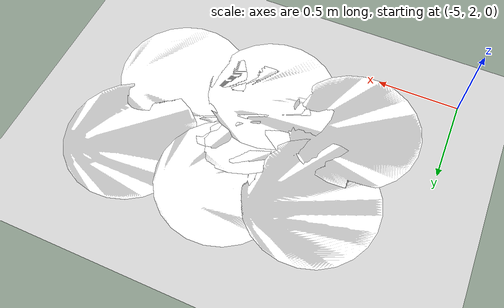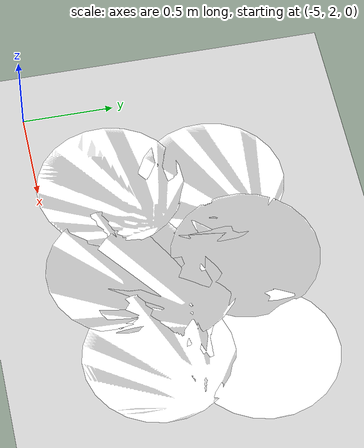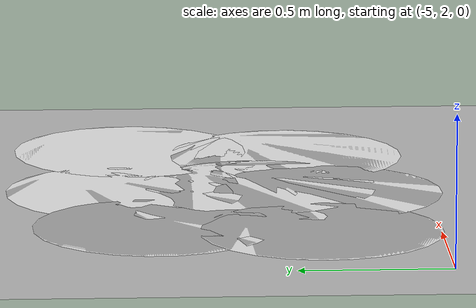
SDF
<sdf version="1.4">
 <world name="default">
  <light name="sun" type="directional">
   <pose>0 0 10 0 -0 0</pose>
   <diffuse>0.8 0.8 0.8 1</diffuse>
   <specular>0.2 0.2 0.2 1</specular>
   <attenuation>
    <range>1000</range>
    <constant>0.9</constant>
    <linear>0.01</linear>
    <quadratic>0.001</quadratic>
   </attenuation>
   <direction>-0.5 0.1 -0.9</direction>
  </light>
  <model name="ground_plane">
   <static>1</static>
   <link name="link">
    <collision name="collision">
     <geometry><plane><normal>0 0 1</normal><size>100 100</size></plane></geometry>
     <surface><friction><ode><mu>100</mu><mu2>50</mu2></ode></friction></surface>
    </collision>
    <visual name="visual">
     <cast_shadows>0</cast_shadows>
     <geometry><plane><normal>0 0 1</normal><size>100 100</size></plane></geometry>
     <material>
      <script><uri>file://media/materials/scripts/gazebo.material</uri><name>Gazebo/Grey</name></script>
     </material>
    </visual>
    <velocity_decay><linear>0</linear><angular>0</angular></velocity_decay>
   </link>
  </model>
  <physics type="ode">
   <max_step_size>0.01</max_step_size>
   <real_time_factor>1</real_time_factor>
   <real_time_update_rate>100</real_time_update_rate>
   <gravity>0 0 -9.8</gravity>
  </physics>
  <scene><ambient>0.4 0.4 0.4 1</ambient><background>0.7 0.7 0.7 1</background><shadows>1</shadows></scene>
  <model name="fogo">
   <static>1</static>
   <link name="chassis">
    <pose>0 0 0.001 0 -0 0</pose>
    <visual name="visual">
     <geometry><mesh><uri>file:///home/dav/.gazebo/models/1fogo/fire_marker.dae</uri></mesh></geometry>
    </visual>
    <velocity_decay><linear>0</linear><angular>0</angular></velocity_decay>
   </link>
   <pose>-3.91583 2.34864 0 0 -0 0</pose>
  </model>
  <model name="fogo_0">
   <static>1</static>
   <link name="chassis">
    <pose>0 0 0.001 0 -0 0</pose>
    <visual name="visual">
     <geometry><mesh><uri>file:///home/dav/.gazebo/models/1fogo/fire_marker.dae</uri></mesh></geometry>
    </visual>
    <velocity_decay><linear>0</linear><angular>0</angular></velocity_decay>
   </link>
   <pose>-4.39342 2.93161 0 0 -0 0</pose>
  </model>
  <model name="fogo_1">
   <static>1</static>
   <link name="chassis">
    <pose>0 0 0.001 0 -0 0</pose>
    <visual name="visual">
     <geometry><mesh><uri>file:///home/dav/.gazebo/models/1fogo/fire_marker.dae</uri></mesh></geometry>
    </visual>
    <velocity_decay><linear>0</linear><angular>0</angular></velocity_decay>
   </link>
   <pose>-4.46952 2.39073 0 0 -0 0</pose>
  </model>
  <model name="fogo_2">
   <static>1</static>
   <link name="chassis">
    <pose>0 0 0.001 0 -0 0</pose>
    <visual name="visual">
     <geometry><mesh><uri>file:///home/dav/.gazebo/models/1fogo/fire_marker.dae</uri></mesh></geometry>
    </visual>
    <velocity_decay><linear>0</linear><angular>0</angular></velocity_decay>
   </link>
   <pose>-3.26621 2.97863 0 0 -0 0</pose>
  </model>
  <model name="fogo_3">
   <static>1</static>
   <link name="chassis">
    <pose>0 0 0.001 0 -0 0</pose>
    <visual name="visual">
     <geometry><mesh><uri>file:///home/dav/.gazebo/models/1fogo/fire_marker.dae</uri></mesh></geometry>
    </visual>
    <velocity_decay><linear>0</linear><angular>0</angular></velocity_decay>
   </link>
   <pose>-3.34983 2.44339 0 0 -0 0</pose>
  </model>
  <model name="fogo_4">
   <static>1</static>
   <link name="chassis">
    <pose>0 0 0.001 0 -0 0</pose>
    <visual name="visual">
     <geometry><mesh><uri>file:///home/dav/.gazebo/models/1fogo/fire_marker.dae</uri></mesh></geometry>
    </visual>
    <velocity_decay><linear>0</linear><angular>0</angular></velocity_decay>
   </link>
   <pose>-3.88659 3.01423 0 0 -0 0</pose>
  </model>
  <model name="fogo_5">
   <static>1</static>
   <link name="chassis">
    <pose>0 0 0.001 0 -0 0</pose>
    <visual name="visual">
     <geometry><mesh><uri>file:///home/dav/.gazebo/models/1fogo/fire_marker.dae</uri></mesh></geometry>
    </visual>
    <velocity_decay><linear>0</linear><angular>0</angular></velocity_decay>
   </link>
   <pose>-3.82564 2.56356 0 0 -0 0</pose>
  </model>
 </world>
</sdf>
